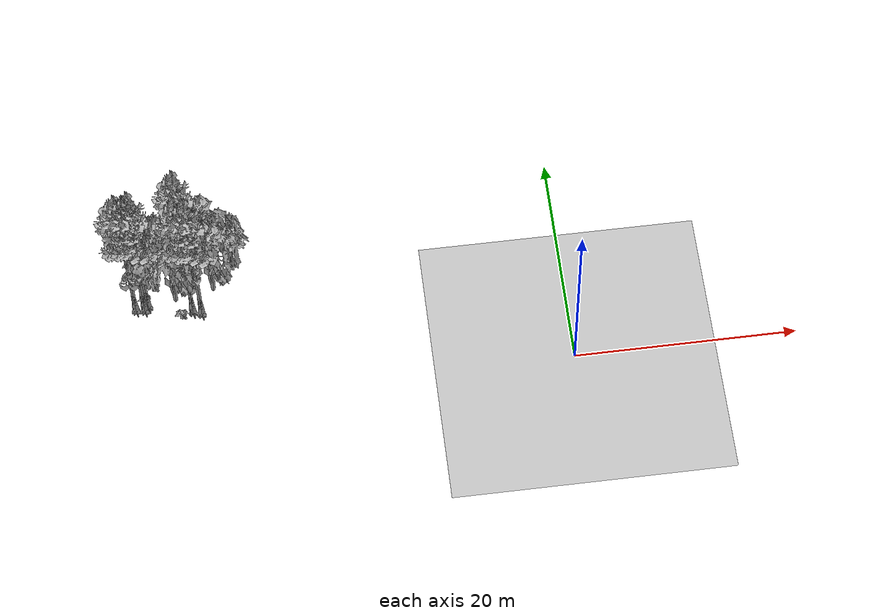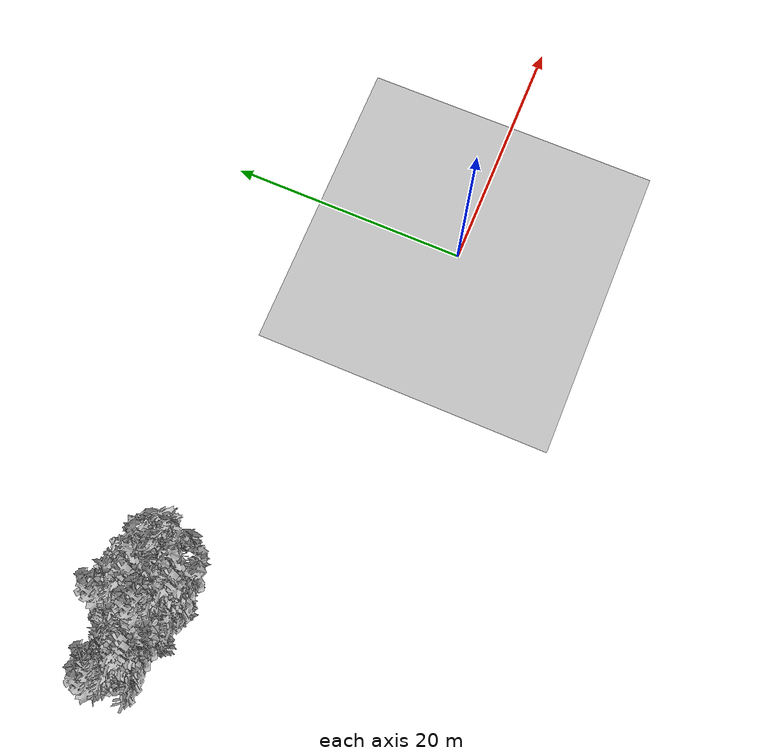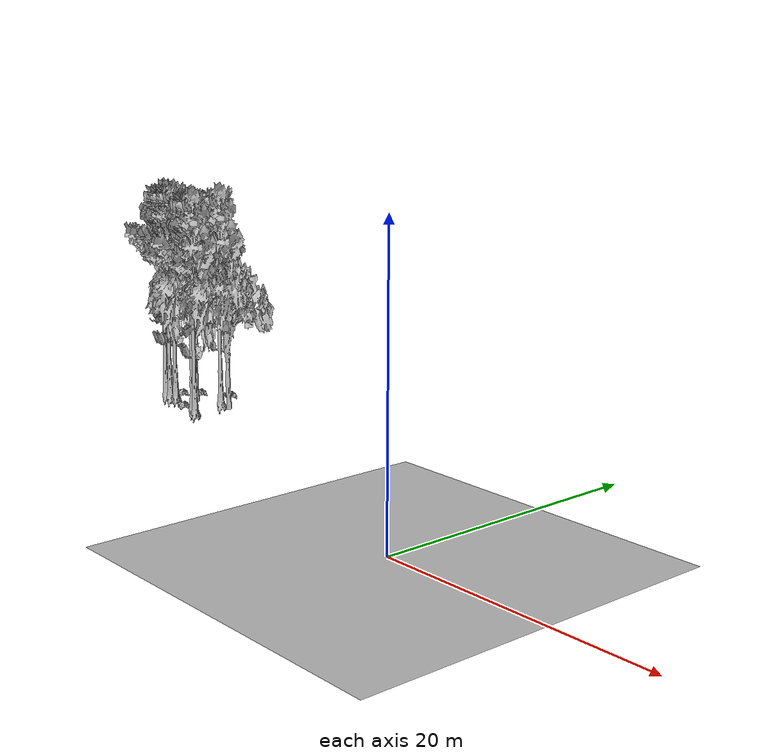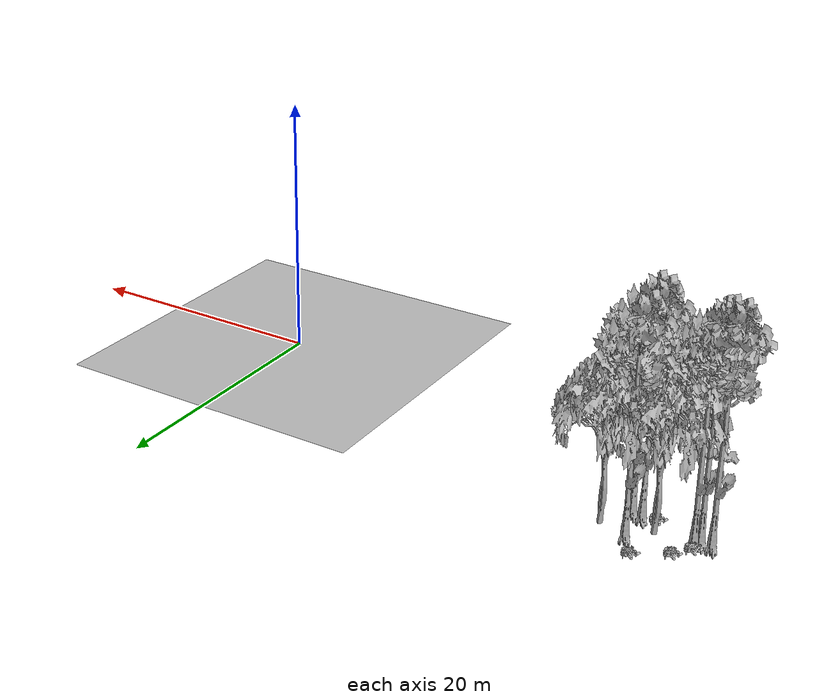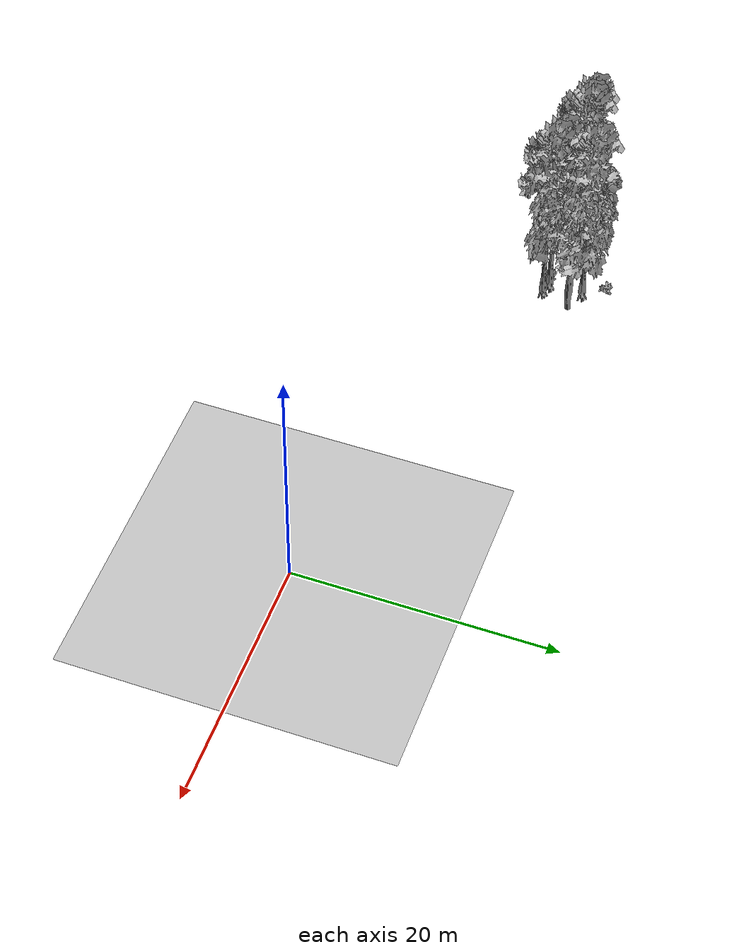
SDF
<sdf version="1.7">
 <world name="default">
  <model name="ground_plane">
   <static>1</static>
   <link name="link">
    <collision name="collision">
     <pose>-50 0 0 0 -0 0</pose>
     <geometry><plane><normal>0 0 1</normal><size>80 80</size></plane></geometry>
     <surface><contact><ode><min_depth>0.01</min_depth><max_vel>0</max_vel></ode></contact></surface>
    </collision>
    <visual name="grass">
     <cast_shadows>0</cast_shadows>
     <geometry>
      <mesh>
       <scale>0.46714285714285714 0.46714285714285714 0.1</scale>
       <uri>file://grass_plane/meshes/grass_plane.dae</uri>
      </mesh>
     </geometry>
    </visual>
   </link>
  </model>
  <model name="Tree 21">
   <static>1</static>
   <pose>-37.792176039891544 9.493826799292847 0 1.57079 -0 0</pose>
   <link name="link">
    <collision name="collision">
     <geometry><mesh><scale>3.5 5 3.5</scale><uri>model://tree_9/meshes/tree_9.obj</uri></mesh></geometry>
    </collision>
    <visual name="visual">
     <geometry><mesh><scale>3.5 5 3.5</scale><uri>model://tree_9/meshes/tree_9.obj</uri></mesh></geometry>
    </visual>
   </link>
  </model>
  <model name="Tree 155">
   <static>1</static>
   <pose>-38.57616004935375 9.595008257375937 0 1.57079 -0 0</pose>
   <link name="link">
    <collision name="collision">
     <geometry><mesh><scale>3.5 5 3.5</scale><uri>model://tree_9/meshes/tree_9.obj</uri></mesh></geometry>
    </collision>
    <visual name="visual">
     <geometry><mesh><scale>3.5 5 3.5</scale><uri>model://tree_9/meshes/tree_9.obj</uri></mesh></geometry>
    </visual>
   </link>
  </model>
  <model name="Tree 194">
   <static>1</static>
   <pose>-35.023166394506575 10.146477616344086 0 1.57079 -0 0</pose>
   <link name="link">
    <collision name="collision">
     <geometry><mesh><scale>3.5 5 3.5</scale><uri>model://tree_2/meshes/tree_2.obj</uri></mesh></geometry>
    </collision>
    <visual name="visual">
     <geometry><mesh><scale>3.5 5 3.5</scale><uri>model://tree_2/meshes/tree_2.obj</uri></mesh></geometry>
    </visual>
   </link>
  </model>
  <model name="Tree 243">
   <static>1</static>
   <pose>-31.563875950668802 10.849623169332794 0 1.57079 -0 0</pose>
   <link name="link">
    <collision name="collision">
     <geometry><mesh><scale>3.5 5 3.5</scale><uri>model://tree_2/meshes/tree_2.obj</uri></mesh></geometry>
    </collision>
    <visual name="visual">
     <geometry><mesh><scale>3.5 5 3.5</scale><uri>model://tree_2/meshes/tree_2.obj</uri></mesh></geometry>
    </visual>
   </link>
  </model>
  <model name="Tree 283">
   <static>1</static>
   <pose>-33.50337890721669 8.798893705576063 0 1.57079 -0 0</pose>
   <link name="link">
    <collision name="collision">
     <geometry><mesh><scale>3.5 5 3.5</scale><uri>model://tree_9/meshes/tree_9.obj</uri></mesh></geometry>
    </collision>
    <visual name="visual">
     <geometry><mesh><scale>3.5 5 3.5</scale><uri>model://tree_9/meshes/tree_9.obj</uri></mesh></geometry>
    </visual>
   </link>
  </model>
  <model name="Tree 426">
   <static>1</static>
   <pose>-33.47040103854695 11.462626340170388 0 1.57079 -0 0</pose>
   <link name="link">
    <collision name="collision">
     <geometry><mesh><scale>3.5 5 3.5</scale><uri>model://tree_9/meshes/tree_9.obj</uri></mesh></geometry>
    </collision>
    <visual name="visual">
     <geometry><mesh><scale>3.5 5 3.5</scale><uri>model://tree_9/meshes/tree_9.obj</uri></mesh></geometry>
    </visual>
   </link>
  </model>
  <model name="Tree 533">
   <static>1</static>
   <pose>-37.45261642571922 9.805770707289284 0 1.57079 -0 0</pose>
   <link name="link">
    <collision name="collision">
     <geometry><mesh><scale>3.5 5 3.5</scale><uri>model://tree_9/meshes/tree_9.obj</uri></mesh></geometry>
    </collision>
    <visual name="visual">
     <geometry><mesh><scale>3.5 5 3.5</scale><uri>model://tree_9/meshes/tree_9.obj</uri></mesh></geometry>
    </visual>
   </link>
  </model>
  <model name="Tree 575">
   <static>1</static>
   <pose>-32.715599524494365 8.496996538342898 0 1.57079 -0 0</pose>
   <link name="link">
    <collision name="collision">
     <geometry><mesh><scale>3.5 5 3.5</scale><uri>model://tree_9/meshes/tree_9.obj</uri></mesh></geometry>
    </collision>
    <visual name="visual">
     <geometry><mesh><scale>3.5 5 3.5</scale><uri>model://tree_9/meshes/tree_9.obj</uri></mesh></geometry>
    </visual>
   </link>
  </model>
  <model name="Bush 150">
   <static>1</static>
   <pose>-37.71985985166122 10.507890305852328 0 1.57079 -0 0</pose>
   <link name="link">
    <collision name="collision">
     <geometry><mesh><scale>2 2 2</scale><uri>model://bush_2/meshes/bush_2.obj</uri></mesh></geometry>
     <surface><contact><collide_without_contact>false</collide_without_contact></contact></surface>
    </collision>
    <visual name="visual">
     <geometry><mesh><scale>2 2 2</scale><uri>model://bush_2/meshes/bush_2.obj</uri></mesh></geometry>
    </visual>
   </link>
  </model>
  <model name="Bush 197">
   <static>1</static>
   <pose>-34.518622133369355 8.539211266942388 0 1.57079 -0 0</pose>
   <link name="link">
    <collision name="collision">
     <geometry><mesh><scale>2 2 2</scale><uri>model://bush_2/meshes/bush_2.obj</uri></mesh></geometry>
     <surface><contact><collide_without_contact>false</collide_without_contact></contact></surface>
    </collision>
    <visual name="visual">
     <geometry><mesh><scale>2 2 2</scale><uri>model://bush_2/meshes/bush_2.obj</uri></mesh></geometry>
    </visual>
   </link>
  </model>
  <model name="Bush 475">
   <static>1</static>
   <pose>-36.807479376677 11.693451429241215 0 1.57079 -0 0</pose>
   <link name="link">
    <collision name="collision">
     <geometry><mesh><scale>2 2 2</scale><uri>model://bush_2/meshes/bush_2.obj</uri></mesh></geometry>
     <surface><contact><collide_without_contact>false</collide_without_contact></contact></surface>
    </collision>
    <visual name="visual">
     <geometry><mesh><scale>2 2 2</scale><uri>model://bush_2/meshes/bush_2.obj</uri></mesh></geometry>
    </visual>
   </link>
  </model>
  <model name="Bush 528">
   <static>1</static>
   <pose>-34.54337659722534 13.077645058442414 0 1.57079 -0 0</pose>
   <link name="link">
    <collision name="collision">
     <geometry><mesh><scale>2 2 2</scale><uri>model://bush_2/meshes/bush_2.obj</uri></mesh></geometry>
     <surface><contact><collide_without_contact>false</collide_without_contact></contact></surface>
    </collision>
    <visual name="visual">
     <geometry><mesh><scale>2 2 2</scale><uri>model://bush_2/meshes/bush_2.obj</uri></mesh></geometry>
    </visual>
   </link>
  </model>
 </world>
</sdf>
